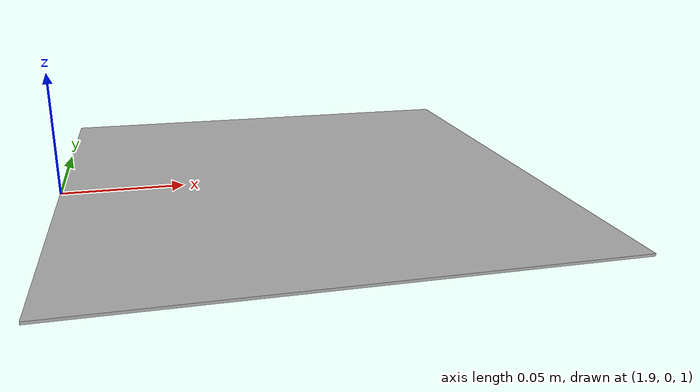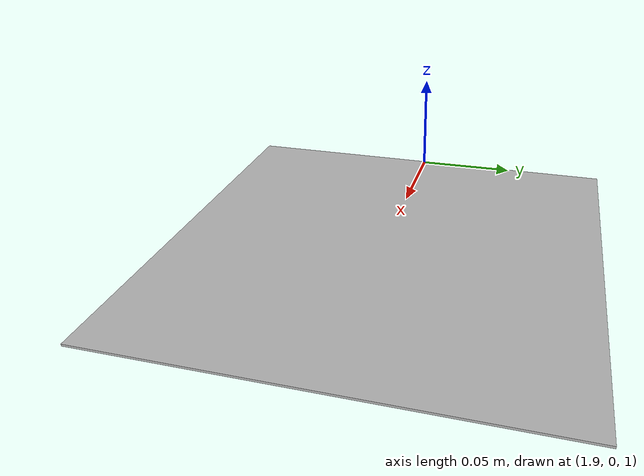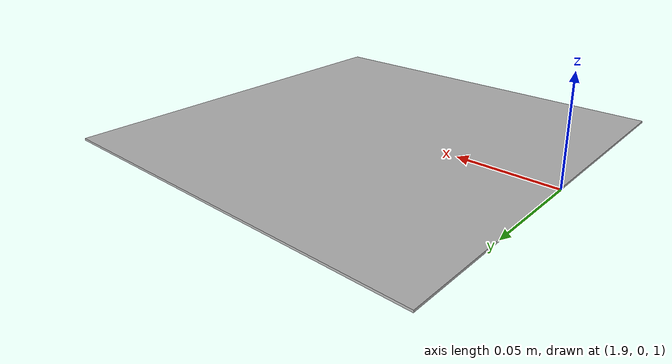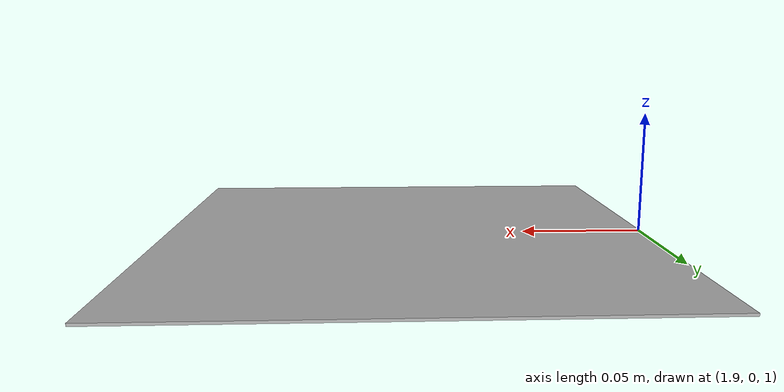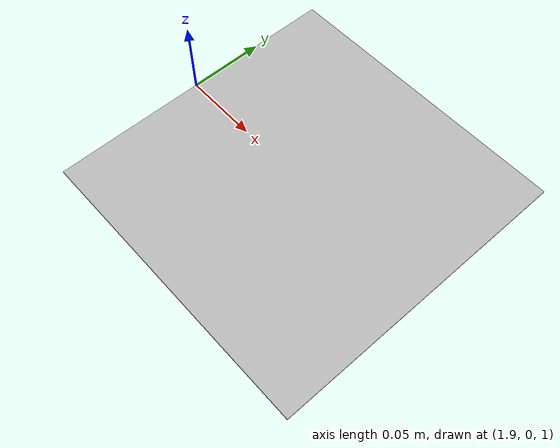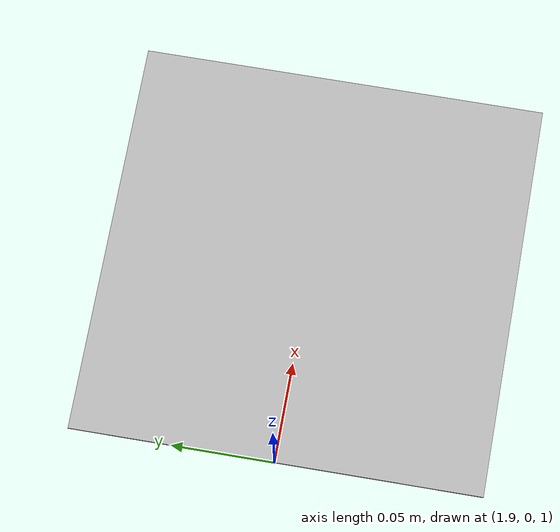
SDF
<?xml version="1.0"?>
<sdf version="1.6">
  <model name="apriltag_36h11_id0">
    <static>true</static>

    <!-- Pose: x y z roll pitch yaw -->
    <pose>2 0 1 0 0 0</pose>

    <link name="tag_link">
      <collision name="collision">
        <geometry>
          <box>
            <size>0.2 0.2 0.001</size>
          </box>
        </geometry>
      </collision>

      <visual name="visual">
        <geometry>
          <box>
            <size>0.2 0.2 0.001</size>
          </box>
        </geometry>

        <material>
          <script>
            <uri>model://apriltag_36h11_id0/materials/scripts</uri>
            <uri>model://apriltag_36h11_id0/materials/textures</uri>
            <name>AprilTag/Tag0</name>
          </script>
        </material>
      </visual>
    </link>
  </model>
</sdf>
